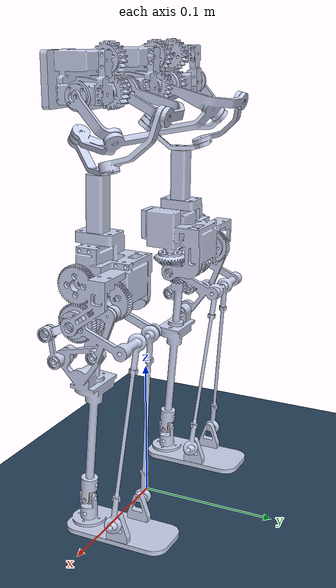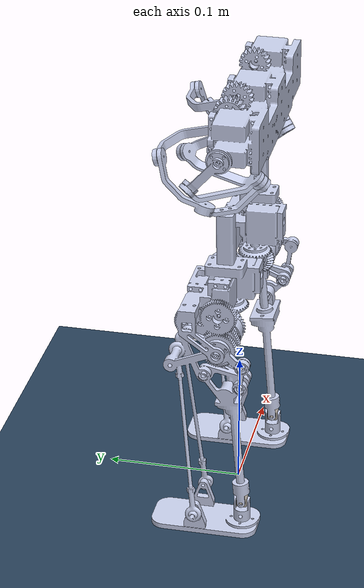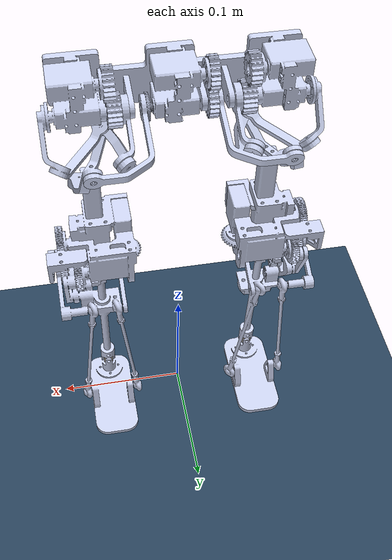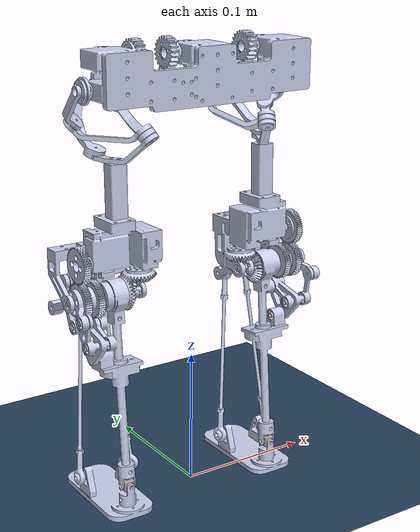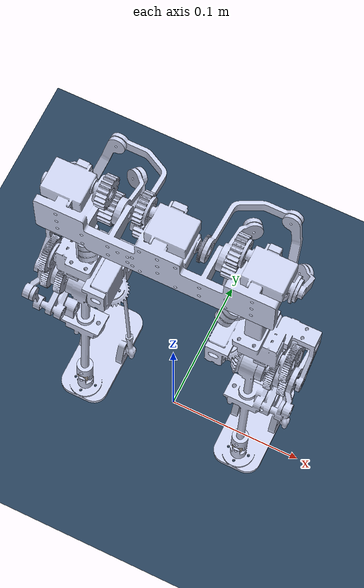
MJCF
<mujoco model="MyRobot Scene">
    <option timestep="0.005" gravity="0 0 -9.81"/>
    <statistic center="0 0 0.5" extent="1.5"/>

    <visual>
        <headlight diffuse="0.6 0.6 0.6" ambient="0.1 0.1 0.1" specular="0 0 0"/>
        <rgba haze="0.15 0.25 0.35 1"/>
        <global azimuth="120" elevation="-20"/>
    </visual>

    <asset>
        <texture type="skybox" builtin="gradient" rgb1="0.3 0.5 0.7" rgb2="0 0 0" width="512" height="309"/>
        <texture name="plane" type="2d" builtin="checker" rgb1="0.2 0.3 0.4" rgb2="0.1 0.2 0.3" width="512" height="512" mark="cross" markrgb="0.8 0.8 0.8"/>
        <material name="plane" texture="plane" texrepeat="5 5" reflectance="0.2"/>
    </asset>

    <worldbody>
        <light pos="0 0 10" dir="0 0 -1" directional="true"/>

        <geom name="floor" size="0 0 0.05" type="plane" material="plane" condim="3" friction="1.0 1.0 0.0"/>
    </worldbody>

    <include file="robot.xml"/>
</mujoco>

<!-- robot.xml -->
<mujoco model="MyRobot_Entity">
    <compiler angle="radian" meshdir="assets" autolimits="true"/>

    <default>
        <default class="myrobot">
            <joint damping="1" armature="0.1" frictionloss="0.0"/>
          <!-- MuJoCo friction = (sliding, torsional, rolling). Use non-zero
              torsional/rolling to avoid the feet behaving like they're on ice. -->
          <geom condim="3" friction="1.0 0.05 0.001" contype="1" conaffinity="1"/>
        </default>
        <default class="visual">
            <geom type="mesh" contype="0" conaffinity="0" group="2" material="metal"/>
        </default>
        <default class="collision">
            <geom type="mesh" group="1"/>
        </default>
    </default>

    <asset>
        <mesh name="base_link" file="base_link.STL"/>
        <mesh name="RThighP" file="RThighP.STL"/>
        <mesh name="RThighY" file="RThighY.STL"/>
        <mesh name="RThighR" file="RThighR.STL"/>
        <mesh name="RShankP" file="RShankP.STL"/>
        <mesh name="RFootP" file="RFootP.STL"/>
        <mesh name="RFootR" file="RFootR.STL"/>
        <mesh name="LThighP" file="LThighP.STL"/>
        <mesh name="LThighY" file="LThighY.STL"/>
        <mesh name="LThighR" file="LThighR.STL"/>
        <mesh name="LShankP" file="LShankP.STL"/>
        <mesh name="LFootP" file="LFootP.STL"/>
        <mesh name="LFootR" file="LFootR.STL"/>
        <material name="metal" rgba="0.8 0.8 0.8 1"/>
    </asset>

    <worldbody>
        <body name="base_link" pos="0 0 0.30" childclass="myrobot">
            <freejoint/>
            <!-- 显式添加惯性参数，覆盖自动计算 -->
            <inertial pos="0 0 0" mass="10" diaginertia="0.1 0.1 0.1"/>

            <geom type="mesh" mesh="base_link" class="visual" rgba="0.79 0.82 0.93 1"/>
            <geom type="mesh" mesh="base_link" class="collision"/>

            <body name="RThighP" pos="0.017714 0 0" quat="0.739176 0.673512 0 0">
                <inertial pos="0.0296 -0.0145 -0.0121" mass="0.5" diaginertia="0.001 0.001 0.001"/>
                <joint name="RHipP" axis="-1 0 0" range="-1 1"/>
                <geom type="mesh" mesh="RThighP" class="visual" rgba="0.79 0.82 0.93 1"/>
                <geom type="mesh" mesh="RThighP" class="collision"/>

                <body name="RThighY" pos="0.047436 0.01 -0.00611">
                    <inertial pos="-0.0027 -0.0433 -0.0122" mass="0.5" diaginertia="0.001 0.001 0.001"/>
                    <joint name="RHipY" axis="0 -0.15469 -0.987963" range="-0.5 0.5"/>
                    <geom type="mesh" mesh="RThighY" class="visual" rgba="0.79 0.82 0.93 1"/>
                    <geom type="mesh" mesh="RThighY" class="collision"/>

                    <body name="RThighR" pos="-0.0052192 -0.059002 0.0025558" quat="0.999355 0.0359053 0 0">
                        <inertial pos="-0.0001 -0.0633 -0.0045" mass="0.8" diaginertia="0.002 0.002 0.002"/>
                        <joint name="RHipR" axis="0 -1 0" range="-0.5 0.5"/>
                        <geom type="mesh" mesh="RThighR" class="visual" rgba="0.79 0.82 0.93 1"/>
                        <geom type="mesh" mesh="RThighR" class="collision"/>

                        <body name="RShankP" pos="0 -0.09088 0" quat="0.999466 -0.0326887 0 0">
                            <inertial pos="0.0072 -0.0378 -0.0074" mass="0.6" diaginertia="0.002 0.002 0.002"/>
                            <joint name="RKneeP" axis="1 0 0" range="-2 0.2"/>
                            <geom type="mesh" mesh="RShankP" class="visual" rgba="0.79 0.82 0.93 1"/>
                            <geom type="mesh" mesh="RShankP" class="collision"/>

                            <body name="RFootP" pos="0 -0.14 0" quat="0.999066 0.0432011 0 0">
                                <inertial pos="0 0 0" mass="0.4" diaginertia="0.001 0.001 0.001"/>
                                <joint name="RAankleP" axis="-1 0 0" range="-0.5 0.5"/>
                                <geom type="mesh" mesh="RFootP" class="visual" rgba="0.65 0.62 0.59 1"/>
                                <!-- Restore collision -->
                                <geom type="mesh" mesh="RFootP" class="collision"/>

                                <body name="RFootR">
                                    <inertial pos="0 -0.0174 -0.0244" mass="0.4" diaginertia="0.001 0.001 0.001"/>
                                    <joint name="RAnkleR" axis="0 0 1" range="-0.3 0.3"/>
                                    <geom type="mesh" mesh="RFootR" class="visual" rgba="0.79 0.82 0.93 1"/>
                                    <!-- Restore collision -->
                                    <geom type="mesh" mesh="RFootR" class="collision"/>
                                </body>
                            </body>
                        </body>
                    </body>
                </body>
            </body>

            <body name="LThighP" pos="-0.022372 0 0" quat="0.713335 0.700822 0.000456284 -0.0012193">
                <inertial pos="-0.0268 -0.0161 -0.0116" mass="0.5" diaginertia="0.001 0.001 0.001"/>
                <joint name="LHipP" axis="1 0 0" range="-1 1"/>
                <geom type="mesh" mesh="LThighP" class="visual" rgba="0.79 0.82 0.93 1"/>
                <geom type="mesh" mesh="LThighP" class="collision"/>

                <body name="LThighY" pos="-0.032075 5.5879e-05 -6.6114e-05">
                    <inertial pos="-0.0085 -0.0345 -0.0158" mass="0.5" diaginertia="0.001 0.001 0.001"/>
                    <joint name="LHipY" axis="0 -0.225191 -0.974315" range="-0.5 0.5"/>
                    <geom type="mesh" mesh="LThighY" class="visual" rgba="0.79 0.82 0.93 1"/>
                    <geom type="mesh" mesh="LThighY" class="collision"/>

                    <body name="LThighR" pos="-0.006 -0.04904 0">
                        <inertial pos="-0.003 -0.0627 -0.0046" mass="0.8" diaginertia="0.002 0.002 0.002"/>
                        <joint name="LHipR" axis="0 -1 0" range="-0.5 0.5"/>
                        <geom type="mesh" mesh="LThighR" class="visual" rgba="0.79 0.82 0.93 1"/>
                        <geom type="mesh" mesh="LThighR" class="collision"/>

                        <body name="LShankP" pos="0 -0.09088 -1e-05" quat="0.999287 -0.0377545 0 0">
                            <inertial pos="-0.011 -0.0393 -0.0077" mass="0.6" diaginertia="0.002 0.002 0.002"/>
                            <joint name="LKneeP" axis="1 0 0" range="-2 0.5"/>
                            <geom type="mesh" mesh="LShankP" class="visual" rgba="0.79 0.82 0.93 1"/>
                            <geom type="mesh" mesh="LShankP" class="collision"/>

                            <body name="LFootP" pos="0 -0.14 0" quat="0.998914 0.0465881 0 0">
                                <inertial pos="-0.0035 0 0" mass="0.4" diaginertia="0.001 0.001 0.001"/>
                                <joint name="LAnkleP" axis="-1 0 0" range="-0.5 0.5"/>
                                <geom type="mesh" mesh="LFootP" class="visual" rgba="0.65 0.62 0.59 1"/>
                                <!-- Restore collision -->
                                <geom type="mesh" mesh="LFootP" class="collision"/>

                                <body name="LFootR" pos="-0.0035 0 0">
                                    <inertial pos="0 -0.0174 -0.0244" mass="0.4" diaginertia="0.001 0.001 0.001"/>
                                    <joint name="LAnkleR" axis="0 0 1" range="-0.3 0.3"/>
                                    <geom type="mesh" mesh="LFootR" class="visual" rgba="0.79 0.82 0.93 1"/>
                                    <!-- Restore collision -->
                                    <geom type="mesh" mesh="LFootR" class="collision"/>
                                </body>
                            </body>
                        </body>
                    </body>
                </body>
            </body>
        </body>
    </worldbody>

    <contact>
        <exclude body1="RShankP" body2="RFootR"/>
        <exclude body1="LShankP" body2="LFootR"/>
    </contact>

    <actuator>
        <motor name="RHipP" joint="RHipP" gear="1" forcerange="-150 150"/>
        <motor name="RHipY" joint="RHipY" gear="1" forcerange="-150 150"/>
        <motor name="RHipR" joint="RHipR" gear="1" forcerange="-150 150"/>
        <motor name="RKneeP" joint="RKneeP" gear="1" forcerange="-150 150"/>
        <motor name="LHipP" joint="LHipP" gear="1" forcerange="-150 150"/>
        <motor name="LHipY" joint="LHipY" gear="1" forcerange="-150 150"/>
        <motor name="LHipR" joint="LHipR" gear="1" forcerange="-150 150"/>
        <motor name="LKneeP" joint="LKneeP" gear="1" forcerange="-150 150"/>

        <motor name="RAankleP" joint="RAankleP" gear="1" forcerange="-50 50"/>
        <motor name="RAnkleR" joint="RAnkleR" gear="1" forcerange="-50 50"/>
        <motor name="LAnkleP" joint="LAnkleP" gear="1" forcerange="-50 50"/>
        <motor name="LAnkleR" joint="LAnkleR" gear="1" forcerange="-50 50"/>
    </actuator>

    <sensor>
        <jointpos name="qpos_all" joint="RHipP"/>
    </sensor>
</mujoco>
